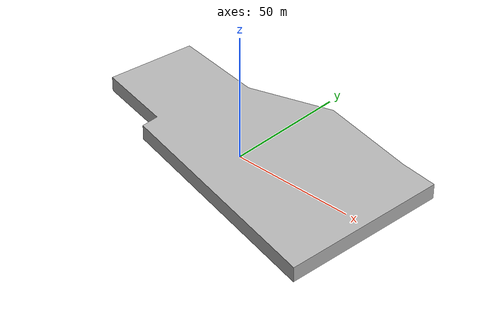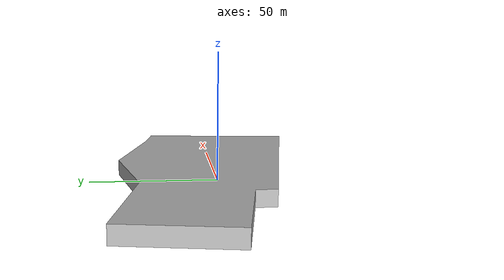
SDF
<?xml version="1.0" ?>
<sdf version="1.7">
  <model name="building_0160_assumed_a_limite_de_etar">
    <static>true</static>
    <link name="building_link">
      <visual name="building_visual">
        <geometry>
          <mesh>
            <uri>model://building_0160_assumed_a_limite_de_etar/meshes/construction_0160_assumed_A_Limite_de_ETAR_h6m.obj</uri>
          </mesh>
        </geometry>
      </visual>
    <collision name="building_collision">
      <geometry>
        <mesh>
          <uri>model://building_0160_assumed_a_limite_de_etar/meshes/construction_0160_assumed_A_Limite_de_ETAR_h6m.obj</uri>
        </mesh>
      </geometry>
    </collision>
    </link>
  </model>
</sdf>
